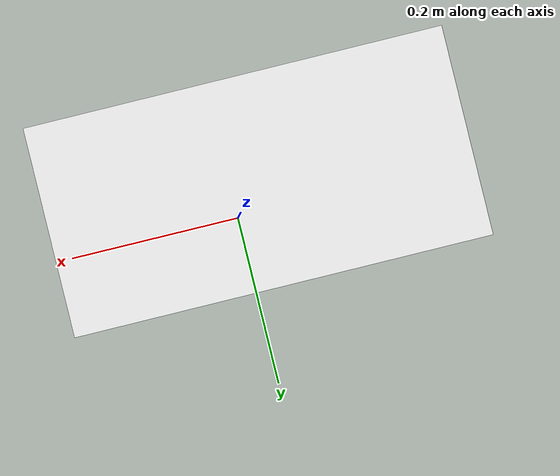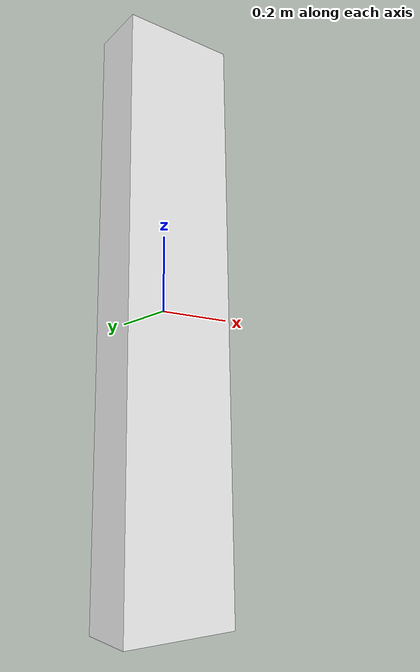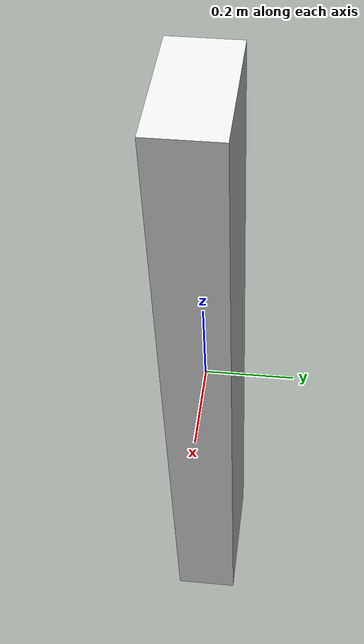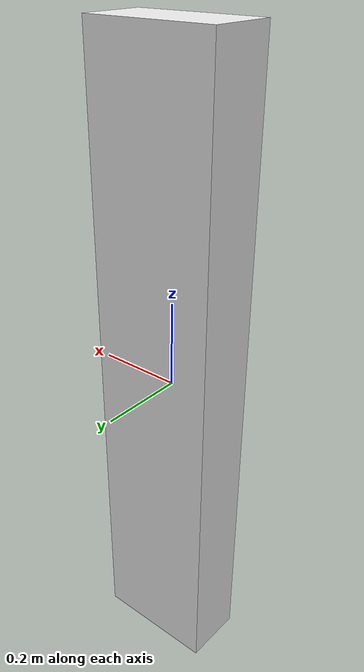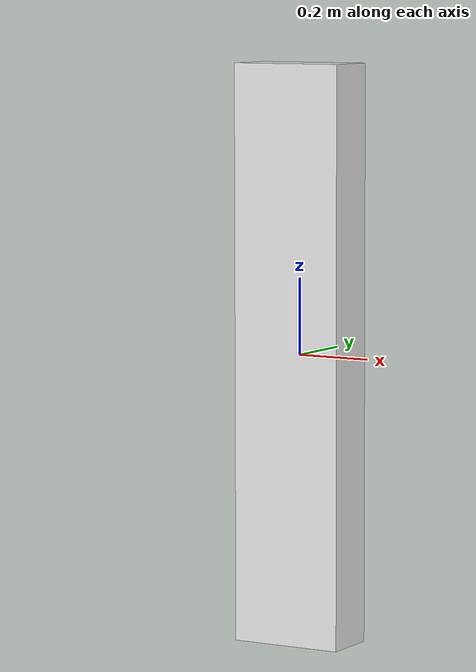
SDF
<?xml version="1.0"?>
<sdf version="1.6">
  <model name="ledTube">
    <static>true</static>
    <link name="base_link">
      <!-- Main tube as rectangle box -->
      <visual name="tube_visual">
        <geometry>
          <box>
            <size>0.30 0.15  1.505</size>
          </box>
        </geometry>
        <material>
          <ambient>0.7 0.7 0.7 1.0</ambient>
          <diffuse>0.9 0.9 0.9 1.0</diffuse>
          <specular>0.9 0.9 0.9 1.0</specular>
        </material>
      </visual>

      <!-- Collision for main tube -->
      <collision name="tube_collision">
        <geometry>
          <box>
            <size> 0.30 0.15  1.505</size>
          </box>
        </geometry>
      </collision>

      <!-- Inertia properties -->
      <inertial>
        <mass>5.0</mass>
        <inertia>
          <ixx>0.5</ixx>
          <ixy>0.0</ixy>
          <ixz>0.0</ixz>
          <iyy>0.5</iyy>
          <iyz>0.0</iyz>
          <izz>0.1</izz>
        </inertia>
      </inertial>
    </link>
  </model>
</sdf>
